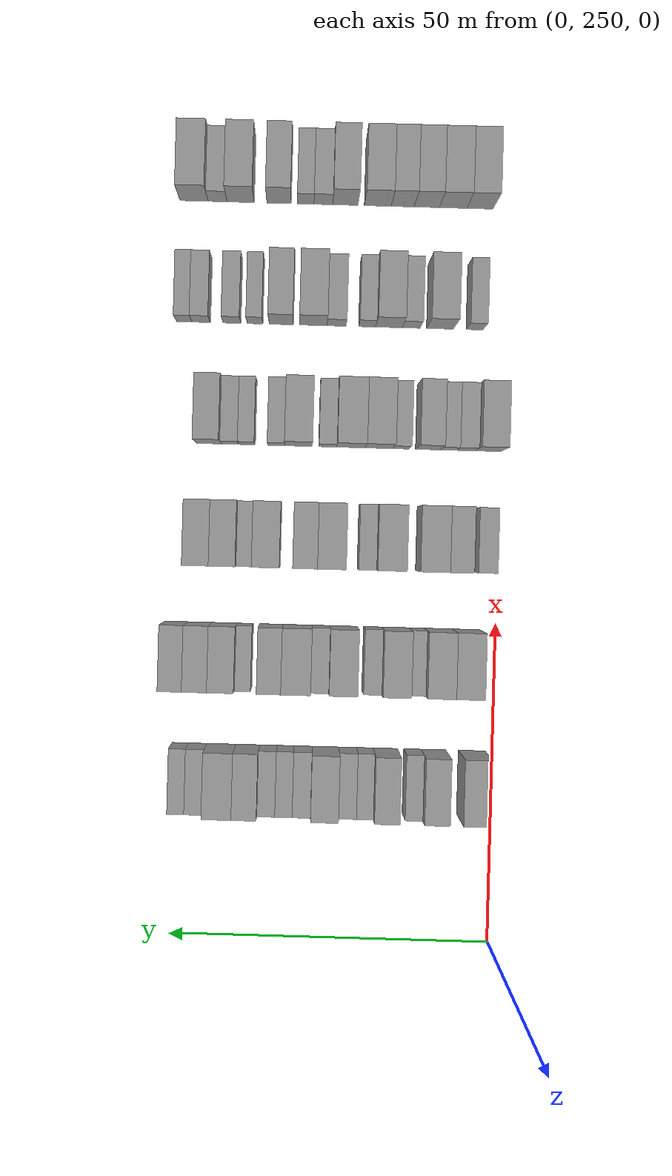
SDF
<sdf version="1.6">
 <world name="default">
  <model name="building_155">
   <static>1</static>
   <pose>25.0000 253.2714 0 0.000000 0.000000 0.000000</pose>
   <link name="link">
    <pose>0 0 4.50 0 0 0</pose>
    <collision name="collision"><geometry><box><size>10.0000 4.2170 9.0000</size></box></geometry></collision>
    <visual name="visual">
     <cast_shadows>0</cast_shadows>
     <geometry><box><size>10.0000 4.2170 9.0000</size></box></geometry>
     <material>
      <script>
       <uri>model://grey_wall/materials/scripts</uri>
       <uri>model://grey_wall/materials/textures</uri>
       <name>vrc/grey_wall</name>
      </script>
     </material>
    </visual>
   </link>
  </model>
  <model name="building_156">
   <static>1</static>
   <pose>25.0000 259.3007 0 0.000000 0.000000 0.000000</pose>
   <link name="link">
    <pose>0 0 4.50 0 0 0</pose>
    <collision name="collision"><geometry><box><size>10.0000 3.8417 9.0000</size></box></geometry></collision>
    <visual name="visual">
     <cast_shadows>0</cast_shadows>
     <geometry><box><size>10.0000 3.8417 9.0000</size></box></geometry>
     <material>
      <script>
       <uri>model://grey_wall/materials/scripts</uri>
       <uri>model://grey_wall/materials/textures</uri>
       <name>vrc/grey_wall</name>
      </script>
     </material>
    </visual>
   </link>
  </model>
  <model name="building_157">
   <static>1</static>
   <pose>25.0000 262.5738 0 0.000000 0.000000 0.000000</pose>
   <link name="link">
    <pose>0 0 3.00 0 0 0</pose>
    <collision name="collision"><geometry><box><size>10.0000 2.7045 6.0000</size></box></geometry></collision>
    <visual name="visual">
     <cast_shadows>0</cast_shadows>
     <geometry><box><size>10.0000 2.7045 6.0000</size></box></geometry>
     <material>
      <script>
       <uri>model://grey_wall/materials/scripts</uri>
       <uri>model://grey_wall/materials/textures</uri>
       <name>vrc/grey_wall</name>
      </script>
     </material>
    </visual>
   </link>
  </model>
  <model name="building_158">
   <static>1</static>
   <pose>25.0000 266.8397 0 0.000000 0.000000 0.000000</pose>
   <link name="link">
    <pose>0 0 4.50 0 0 0</pose>
    <collision name="collision"><geometry><box><size>10.0000 3.8274 9.0000</size></box></geometry></collision>
    <visual name="visual">
     <cast_shadows>0</cast_shadows>
     <geometry><box><size>10.0000 3.8274 9.0000</size></box></geometry>
     <material>
      <script>
       <uri>model://grey_wall/materials/scripts</uri>
       <uri>model://grey_wall/materials/textures</uri>
       <name>vrc/grey_wall</name>
      </script>
     </material>
    </visual>
   </link>
  </model>
  <model name="building_159">
   <static>1</static>
   <pose>25.0000 270.0467 0 0.000000 0.000000 0.000000</pose>
   <link name="link">
    <pose>0 0 3.00 0 0 0</pose>
    <collision name="collision"><geometry><box><size>10.0000 2.5865 6.0000</size></box></geometry></collision>
    <visual name="visual">
     <cast_shadows>0</cast_shadows>
     <geometry><box><size>10.0000 2.5865 6.0000</size></box></geometry>
     <material>
      <script>
       <uri>model://grey_wall/materials/scripts</uri>
       <uri>model://grey_wall/materials/textures</uri>
       <name>vrc/grey_wall</name>
      </script>
     </material>
    </visual>
   </link>
  </model>
  <model name="building_160">
   <static>1</static>
   <pose>25.0000 272.7439 0 0.000000 0.000000 0.000000</pose>
   <link name="link">
    <pose>0 0 3.00 0 0 0</pose>
    <collision name="collision"><geometry><box><size>10.0000 2.8078 6.0000</size></box></geometry></collision>
    <visual name="visual">
     <cast_shadows>0</cast_shadows>
     <geometry><box><size>10.0000 2.8078 6.0000</size></box></geometry>
     <material>
      <script>
       <uri>model://grey_wall/materials/scripts</uri>
       <uri>model://grey_wall/materials/textures</uri>
       <name>vrc/grey_wall</name>
      </script>
     </material>
    </visual>
   </link>
  </model>
  <model name="building_161">
   <static>1</static>
   <pose>25.0000 276.2469 0 0.000000 0.000000 0.000000</pose>
   <link name="link">
    <pose>0 0 4.50 0 0 0</pose>
    <collision name="collision"><geometry><box><size>10.0000 4.1984 9.0000</size></box></geometry></collision>
    <visual name="visual">
     <cast_shadows>0</cast_shadows>
     <geometry><box><size>10.0000 4.1984 9.0000</size></box></geometry>
     <material>
      <script>
       <uri>model://grey_wall/materials/scripts</uri>
       <uri>model://grey_wall/materials/textures</uri>
       <name>vrc/grey_wall</name>
      </script>
     </material>
    </visual>
   </link>
  </model>
  <model name="building_162">
   <static>1</static>
   <pose>25.0000 279.7434 0 0.000000 0.000000 0.000000</pose>
   <link name="link">
    <pose>0 0 3.00 0 0 0</pose>
    <collision name="collision"><geometry><box><size>10.0000 2.7946 6.0000</size></box></geometry></collision>
    <visual name="visual">
     <cast_shadows>0</cast_shadows>
     <geometry><box><size>10.0000 2.7946 6.0000</size></box></geometry>
     <material>
      <script>
       <uri>model://grey_wall/materials/scripts</uri>
       <uri>model://grey_wall/materials/textures</uri>
       <name>vrc/grey_wall</name>
      </script>
     </material>
    </visual>
   </link>
  </model>
  <model name="building_163">
   <static>1</static>
   <pose>25.0000 282.4651 0 0.000000 0.000000 0.000000</pose>
   <link name="link">
    <pose>0 0 3.00 0 0 0</pose>
    <collision name="collision"><geometry><box><size>10.0000 2.6487 6.0000</size></box></geometry></collision>
    <visual name="visual">
     <cast_shadows>0</cast_shadows>
     <geometry><box><size>10.0000 2.6487 6.0000</size></box></geometry>
     <material>
      <script>
       <uri>model://grey_wall/materials/scripts</uri>
       <uri>model://grey_wall/materials/textures</uri>
       <name>vrc/grey_wall</name>
      </script>
     </material>
    </visual>
   </link>
  </model>
  <model name="building_164">
   <static>1</static>
   <pose>25.0000 285.1499 0 0.000000 0.000000 0.000000</pose>
   <link name="link">
    <pose>0 0 3.00 0 0 0</pose>
    <collision name="collision"><geometry><box><size>10.0000 2.7208 6.0000</size></box></geometry></collision>
    <visual name="visual">
     <cast_shadows>0</cast_shadows>
     <geometry><box><size>10.0000 2.7208 6.0000</size></box></geometry>
     <material>
      <script>
       <uri>model://grey_wall/materials/scripts</uri>
       <uri>model://grey_wall/materials/textures</uri>
       <name>vrc/grey_wall</name>
      </script>
     </material>
    </visual>
   </link>
  </model>
  <model name="building_165">
   <static>1</static>
   <pose>25.0000 288.4008 0 0.000000 0.000000 0.000000</pose>
   <link name="link">
    <pose>0 0 4.50 0 0 0</pose>
    <collision name="collision"><geometry><box><size>10.0000 3.7812 9.0000</size></box></geometry></collision>
    <visual name="visual">
     <cast_shadows>0</cast_shadows>
     <geometry><box><size>10.0000 3.7812 9.0000</size></box></geometry>
     <material>
      <script>
       <uri>model://grey_wall/materials/scripts</uri>
       <uri>model://grey_wall/materials/textures</uri>
       <name>vrc/grey_wall</name>
      </script>
     </material>
    </visual>
   </link>
  </model>
  <model name="building_166">
   <static>1</static>
   <pose>25.0000 292.5384 0 0.000000 0.000000 0.000000</pose>
   <link name="link">
    <pose>0 0 4.50 0 0 0</pose>
    <collision name="collision"><geometry><box><size>10.0000 4.4939 9.0000</size></box></geometry></collision>
    <visual name="visual">
     <cast_shadows>0</cast_shadows>
     <geometry><box><size>10.0000 4.4939 9.0000</size></box></geometry>
     <material>
      <script>
       <uri>model://grey_wall/materials/scripts</uri>
       <uri>model://grey_wall/materials/textures</uri>
       <name>vrc/grey_wall</name>
      </script>
     </material>
    </visual>
   </link>
  </model>
  <model name="building_167">
   <static>1</static>
   <pose>25.0000 296.2162 0 0.000000 0.000000 0.000000</pose>
   <link name="link">
    <pose>0 0 3.00 0 0 0</pose>
    <collision name="collision"><geometry><box><size>10.0000 2.8618 6.0000</size></box></geometry></collision>
    <visual name="visual">
     <cast_shadows>0</cast_shadows>
     <geometry><box><size>10.0000 2.8618 6.0000</size></box></geometry>
     <material>
      <script>
       <uri>model://grey_wall/materials/scripts</uri>
       <uri>model://grey_wall/materials/textures</uri>
       <name>vrc/grey_wall</name>
      </script>
     </material>
    </visual>
   </link>
  </model>
  <model name="building_168">
   <static>1</static>
   <pose>25.0000 298.9432 0 0.000000 0.000000 0.000000</pose>
   <link name="link">
    <pose>0 0 3.00 0 0 0</pose>
    <collision name="collision"><geometry><box><size>10.0000 2.5921 6.0000</size></box></geometry></collision>
    <visual name="visual">
     <cast_shadows>0</cast_shadows>
     <geometry><box><size>10.0000 2.5921 6.0000</size></box></geometry>
     <material>
      <script>
       <uri>model://grey_wall/materials/scripts</uri>
       <uri>model://grey_wall/materials/textures</uri>
       <name>vrc/grey_wall</name>
      </script>
     </material>
    </visual>
   </link>
  </model>
  <model name="building_328">
   <static>1</static>
   <pose>44.0000 254.7735 0 0.000000 0.000000 0.000000</pose>
   <link name="link">
    <pose>0 0 4.50 0 0 0</pose>
    <collision name="collision"><geometry><box><size>10.0000 4.3264 9.0000</size></box></geometry></collision>
    <visual name="visual">
     <cast_shadows>0</cast_shadows>
     <geometry><box><size>10.0000 4.3264 9.0000</size></box></geometry>
     <material>
      <script>
       <uri>model://grey_wall/materials/scripts</uri>
       <uri>model://grey_wall/materials/textures</uri>
       <name>vrc/grey_wall</name>
      </script>
     </material>
    </visual>
   </link>
  </model>
  <model name="building_329">
   <static>1</static>
   <pose>44.0000 259.1015 0 0.000000 0.000000 0.000000</pose>
   <link name="link">
    <pose>0 0 4.50 0 0 0</pose>
    <collision name="collision"><geometry><box><size>10.0000 4.3296 9.0000</size></box></geometry></collision>
    <visual name="visual">
     <cast_shadows>0</cast_shadows>
     <geometry><box><size>10.0000 4.3296 9.0000</size></box></geometry>
     <material>
      <script>
       <uri>model://grey_wall/materials/scripts</uri>
       <uri>model://grey_wall/materials/textures</uri>
       <name>vrc/grey_wall</name>
      </script>
     </material>
    </visual>
   </link>
  </model>
  <model name="building_330">
   <static>1</static>
   <pose>44.0000 262.4718 0 0.000000 0.000000 0.000000</pose>
   <link name="link">
    <pose>0 0 3.00 0 0 0</pose>
    <collision name="collision"><geometry><box><size>10.0000 2.4110 6.0000</size></box></geometry></collision>
    <visual name="visual">
     <cast_shadows>0</cast_shadows>
     <geometry><box><size>10.0000 2.4110 6.0000</size></box></geometry>
     <material>
      <script>
       <uri>model://grey_wall/materials/scripts</uri>
       <uri>model://grey_wall/materials/textures</uri>
       <name>vrc/grey_wall</name>
      </script>
     </material>
    </visual>
   </link>
  </model>
  <model name="building_331">
   <static>1</static>
   <pose>44.0000 265.8201 0 0.000000 0.000000 0.000000</pose>
   <link name="link">
    <pose>0 0 4.50 0 0 0</pose>
    <collision name="collision"><geometry><box><size>10.0000 4.2857 9.0000</size></box></geometry></collision>
    <visual name="visual">
     <cast_shadows>0</cast_shadows>
     <geometry><box><size>10.0000 4.2857 9.0000</size></box></geometry>
     <material>
      <script>
       <uri>model://grey_wall/materials/scripts</uri>
       <uri>model://grey_wall/materials/textures</uri>
       <name>vrc/grey_wall</name>
      </script>
     </material>
    </visual>
   </link>
  </model>
  <model name="building_332">
   <static>1</static>
   <pose>44.0000 269.3614 0 0.000000 0.000000 0.000000</pose>
   <link name="link">
    <pose>0 0 3.00 0 0 0</pose>
    <collision name="collision"><geometry><box><size>10.0000 2.7969 6.0000</size></box></geometry></collision>
    <visual name="visual">
     <cast_shadows>0</cast_shadows>
     <geometry><box><size>10.0000 2.7969 6.0000</size></box></geometry>
     <material>
      <script>
       <uri>model://grey_wall/materials/scripts</uri>
       <uri>model://grey_wall/materials/textures</uri>
       <name>vrc/grey_wall</name>
      </script>
     </material>
    </visual>
   </link>
  </model>
  <model name="building_333">
   <static>1</static>
   <pose>44.0000 273.9099 0 0.000000 0.000000 0.000000</pose>
   <link name="link">
    <pose>0 0 4.50 0 0 0</pose>
    <collision name="collision"><geometry><box><size>10.0000 4.2999 9.0000</size></box></geometry></collision>
    <visual name="visual">
     <cast_shadows>0</cast_shadows>
     <geometry><box><size>10.0000 4.2999 9.0000</size></box></geometry>
     <material>
      <script>
       <uri>model://grey_wall/materials/scripts</uri>
       <uri>model://grey_wall/materials/textures</uri>
       <name>vrc/grey_wall</name>
      </script>
     </material>
    </visual>
   </link>
  </model>
  <model name="building_334">
   <static>1</static>
   <pose>44.0000 277.4587 0 0.000000 0.000000 0.000000</pose>
   <link name="link">
    <pose>0 0 3.00 0 0 0</pose>
    <collision name="collision"><geometry><box><size>10.0000 2.7978 6.0000</size></box></geometry></collision>
    <visual name="visual">
     <cast_shadows>0</cast_shadows>
     <geometry><box><size>10.0000 2.7978 6.0000</size></box></geometry>
     <material>
      <script>
       <uri>model://grey_wall/materials/scripts</uri>
       <uri>model://grey_wall/materials/textures</uri>
       <name>vrc/grey_wall</name>
      </script>
     </material>
    </visual>
   </link>
  </model>
  <model name="building_335">
   <static>1</static>
   <pose>44.0000 281.1033 0 0.000000 0.000000 0.000000</pose>
   <link name="link">
    <pose>0 0 4.50 0 0 0</pose>
    <collision name="collision"><geometry><box><size>10.0000 4.4912 9.0000</size></box></geometry></collision>
    <visual name="visual">
     <cast_shadows>0</cast_shadows>
     <geometry><box><size>10.0000 4.4912 9.0000</size></box></geometry>
     <material>
      <script>
       <uri>model://grey_wall/materials/scripts</uri>
       <uri>model://grey_wall/materials/textures</uri>
       <name>vrc/grey_wall</name>
      </script>
     </material>
    </visual>
   </link>
  </model>
  <model name="building_336">
   <static>1</static>
   <pose>44.0000 285.1801 0 0.000000 0.000000 0.000000</pose>
   <link name="link">
    <pose>0 0 4.50 0 0 0</pose>
    <collision name="collision"><geometry><box><size>10.0000 3.6625 9.0000</size></box></geometry></collision>
    <visual name="visual">
     <cast_shadows>0</cast_shadows>
     <geometry><box><size>10.0000 3.6625 9.0000</size></box></geometry>
     <material>
      <script>
       <uri>model://grey_wall/materials/scripts</uri>
       <uri>model://grey_wall/materials/textures</uri>
       <name>vrc/grey_wall</name>
      </script>
     </material>
    </visual>
   </link>
  </model>
  <model name="building_337">
   <static>1</static>
   <pose>44.0000 289.2241 0 0.000000 0.000000 0.000000</pose>
   <link name="link">
    <pose>0 0 3.00 0 0 0</pose>
    <collision name="collision"><geometry><box><size>10.0000 2.4255 6.0000</size></box></geometry></collision>
    <visual name="visual">
     <cast_shadows>0</cast_shadows>
     <geometry><box><size>10.0000 2.4255 6.0000</size></box></geometry>
     <material>
      <script>
       <uri>model://grey_wall/materials/scripts</uri>
       <uri>model://grey_wall/materials/textures</uri>
       <name>vrc/grey_wall</name>
      </script>
     </material>
    </visual>
   </link>
  </model>
  <model name="building_338">
   <static>1</static>
   <pose>44.0000 292.4538 0 0.000000 0.000000 0.000000</pose>
   <link name="link">
    <pose>0 0 4.50 0 0 0</pose>
    <collision name="collision"><geometry><box><size>10.0000 4.0338 9.0000</size></box></geometry></collision>
    <visual name="visual">
     <cast_shadows>0</cast_shadows>
     <geometry><box><size>10.0000 4.0338 9.0000</size></box></geometry>
     <material>
      <script>
       <uri>model://grey_wall/materials/scripts</uri>
       <uri>model://grey_wall/materials/textures</uri>
       <name>vrc/grey_wall</name>
      </script>
     </material>
    </visual>
   </link>
  </model>
  <model name="building_339">
   <static>1</static>
   <pose>44.0000 296.3548 0 0.000000 0.000000 0.000000</pose>
   <link name="link">
    <pose>0 0 4.50 0 0 0</pose>
    <collision name="collision"><geometry><box><size>10.0000 3.7683 9.0000</size></box></geometry></collision>
    <visual name="visual">
     <cast_shadows>0</cast_shadows>
     <geometry><box><size>10.0000 3.7683 9.0000</size></box></geometry>
     <material>
      <script>
       <uri>model://grey_wall/materials/scripts</uri>
       <uri>model://grey_wall/materials/textures</uri>
       <name>vrc/grey_wall</name>
      </script>
     </material>
    </visual>
   </link>
  </model>
  <model name="building_340">
   <static>1</static>
   <pose>44.0000 300.0553 0 0.000000 0.000000 0.000000</pose>
   <link name="link">
    <pose>0 0 4.50 0 0 0</pose>
    <collision name="collision"><geometry><box><size>10.0000 3.6328 9.0000</size></box></geometry></collision>
    <visual name="visual">
     <cast_shadows>0</cast_shadows>
     <geometry><box><size>10.0000 3.6328 9.0000</size></box></geometry>
     <material>
      <script>
       <uri>model://grey_wall/materials/scripts</uri>
       <uri>model://grey_wall/materials/textures</uri>
       <name>vrc/grey_wall</name>
      </script>
     </material>
    </visual>
   </link>
  </model>
  <model name="building_503">
   <static>1</static>
   <pose>63.0000 252.2778 0 0.000000 0.000000 0.000000</pose>
   <link name="link">
    <pose>0 0 3.00 0 0 0</pose>
    <collision name="collision"><geometry><box><size>10.0000 2.9778 6.0000</size></box></geometry></collision>
    <visual name="visual">
     <cast_shadows>0</cast_shadows>
     <geometry><box><size>10.0000 2.9778 6.0000</size></box></geometry>
     <material>
      <script>
       <uri>model://grey_wall/materials/scripts</uri>
       <uri>model://grey_wall/materials/textures</uri>
       <name>vrc/grey_wall</name>
      </script>
     </material>
    </visual>
   </link>
  </model>
  <model name="building_504">
   <static>1</static>
   <pose>63.0000 256.5765 0 0.000000 0.000000 0.000000</pose>
   <link name="link">
    <pose>0 0 4.50 0 0 0</pose>
    <collision name="collision"><geometry><box><size>10.0000 3.6197 9.0000</size></box></geometry></collision>
    <visual name="visual">
     <cast_shadows>0</cast_shadows>
     <geometry><box><size>10.0000 3.6197 9.0000</size></box></geometry>
     <material>
      <script>
       <uri>model://grey_wall/materials/scripts</uri>
       <uri>model://grey_wall/materials/textures</uri>
       <name>vrc/grey_wall</name>
      </script>
     </material>
    </visual>
   </link>
  </model>
  <model name="building_505">
   <static>1</static>
   <pose>63.0000 260.6213 0 0.000000 0.000000 0.000000</pose>
   <link name="link">
    <pose>0 0 4.50 0 0 0</pose>
    <collision name="collision"><geometry><box><size>10.0000 4.4699 9.0000</size></box></geometry></collision>
    <visual name="visual">
     <cast_shadows>0</cast_shadows>
     <geometry><box><size>10.0000 4.4699 9.0000</size></box></geometry>
     <material>
      <script>
       <uri>model://grey_wall/materials/scripts</uri>
       <uri>model://grey_wall/materials/textures</uri>
       <name>vrc/grey_wall</name>
      </script>
     </material>
    </visual>
   </link>
  </model>
  <model name="building_506">
   <static>1</static>
   <pose>63.0000 267.0608 0 0.000000 0.000000 0.000000</pose>
   <link name="link">
    <pose>0 0 4.50 0 0 0</pose>
    <collision name="collision"><geometry><box><size>10.0000 4.4092 9.0000</size></box></geometry></collision>
    <visual name="visual">
     <cast_shadows>0</cast_shadows>
     <geometry><box><size>10.0000 4.4092 9.0000</size></box></geometry>
     <material>
      <script>
       <uri>model://grey_wall/materials/scripts</uri>
       <uri>model://grey_wall/materials/textures</uri>
       <name>vrc/grey_wall</name>
      </script>
     </material>
    </visual>
   </link>
  </model>
  <model name="building_507">
   <static>1</static>
   <pose>63.0000 270.6337 0 0.000000 0.000000 0.000000</pose>
   <link name="link">
    <pose>0 0 3.00 0 0 0</pose>
    <collision name="collision"><geometry><box><size>10.0000 2.7365 6.0000</size></box></geometry></collision>
    <visual name="visual">
     <cast_shadows>0</cast_shadows>
     <geometry><box><size>10.0000 2.7365 6.0000</size></box></geometry>
     <material>
      <script>
       <uri>model://grey_wall/materials/scripts</uri>
       <uri>model://grey_wall/materials/textures</uri>
       <name>vrc/grey_wall</name>
      </script>
     </material>
    </visual>
   </link>
  </model>
  <model name="building_508">
   <static>1</static>
   <pose>63.0000 276.1651 0 0.000000 0.000000 0.000000</pose>
   <link name="link">
    <pose>0 0 4.50 0 0 0</pose>
    <collision name="collision"><geometry><box><size>10.0000 4.3264 9.0000</size></box></geometry></collision>
    <visual name="visual">
     <cast_shadows>0</cast_shadows>
     <geometry><box><size>10.0000 4.3264 9.0000</size></box></geometry>
     <material>
      <script>
       <uri>model://grey_wall/materials/scripts</uri>
       <uri>model://grey_wall/materials/textures</uri>
       <name>vrc/grey_wall</name>
      </script>
     </material>
    </visual>
   </link>
  </model>
  <model name="building_509">
   <static>1</static>
   <pose>63.0000 280.1965 0 0.000000 0.000000 0.000000</pose>
   <link name="link">
    <pose>0 0 4.50 0 0 0</pose>
    <collision name="collision"><geometry><box><size>10.0000 3.7363 9.0000</size></box></geometry></collision>
    <visual name="visual">
     <cast_shadows>0</cast_shadows>
     <geometry><box><size>10.0000 3.7363 9.0000</size></box></geometry>
     <material>
      <script>
       <uri>model://grey_wall/materials/scripts</uri>
       <uri>model://grey_wall/materials/textures</uri>
       <name>vrc/grey_wall</name>
      </script>
     </material>
    </visual>
   </link>
  </model>
  <model name="building_510">
   <static>1</static>
   <pose>63.0000 286.1677 0 0.000000 0.000000 0.000000</pose>
   <link name="link">
    <pose>0 0 4.50 0 0 0</pose>
    <collision name="collision"><geometry><box><size>10.0000 4.2062 9.0000</size></box></geometry></collision>
    <visual name="visual">
     <cast_shadows>0</cast_shadows>
     <geometry><box><size>10.0000 4.2062 9.0000</size></box></geometry>
     <material>
      <script>
       <uri>model://grey_wall/materials/scripts</uri>
       <uri>model://grey_wall/materials/textures</uri>
       <name>vrc/grey_wall</name>
      </script>
     </material>
    </visual>
   </link>
  </model>
  <model name="building_511">
   <static>1</static>
   <pose>63.0000 289.4910 0 0.000000 0.000000 0.000000</pose>
   <link name="link">
    <pose>0 0 3.00 0 0 0</pose>
    <collision name="collision"><geometry><box><size>10.0000 2.4405 6.0000</size></box></geometry></collision>
    <visual name="visual">
     <cast_shadows>0</cast_shadows>
     <geometry><box><size>10.0000 2.4405 6.0000</size></box></geometry>
     <material>
      <script>
       <uri>model://grey_wall/materials/scripts</uri>
       <uri>model://grey_wall/materials/textures</uri>
       <name>vrc/grey_wall</name>
      </script>
     </material>
    </visual>
   </link>
  </model>
  <model name="building_512">
   <static>1</static>
   <pose>63.0000 292.7194 0 0.000000 0.000000 0.000000</pose>
   <link name="link">
    <pose>0 0 4.50 0 0 0</pose>
    <collision name="collision"><geometry><box><size>10.0000 4.0164 9.0000</size></box></geometry></collision>
    <visual name="visual">
     <cast_shadows>0</cast_shadows>
     <geometry><box><size>10.0000 4.0164 9.0000</size></box></geometry>
     <material>
      <script>
       <uri>model://grey_wall/materials/scripts</uri>
       <uri>model://grey_wall/materials/textures</uri>
       <name>vrc/grey_wall</name>
      </script>
     </material>
    </visual>
   </link>
  </model>
  <model name="building_513">
   <static>1</static>
   <pose>63.0000 296.7340 0 0.000000 0.000000 0.000000</pose>
   <link name="link">
    <pose>0 0 4.50 0 0 0</pose>
    <collision name="collision"><geometry><box><size>10.0000 4.0128 9.0000</size></box></geometry></collision>
    <visual name="visual">
     <cast_shadows>0</cast_shadows>
     <geometry><box><size>10.0000 4.0128 9.0000</size></box></geometry>
     <material>
      <script>
       <uri>model://grey_wall/materials/scripts</uri>
       <uri>model://grey_wall/materials/textures</uri>
       <name>vrc/grey_wall</name>
      </script>
     </material>
    </visual>
   </link>
  </model>
  <model name="building_677">
   <static>1</static>
   <pose>82.0000 252.0395 0 0.000000 0.000000 0.000000</pose>
   <link name="link">
    <pose>0 0 4.50 0 0 0</pose>
    <collision name="collision"><geometry><box><size>10.0000 4.0957 9.0000</size></box></geometry></collision>
    <visual name="visual">
     <cast_shadows>0</cast_shadows>
     <geometry><box><size>10.0000 4.0957 9.0000</size></box></geometry>
     <material>
      <script>
       <uri>model://grey_wall/materials/scripts</uri>
       <uri>model://grey_wall/materials/textures</uri>
       <name>vrc/grey_wall</name>
      </script>
     </material>
    </visual>
   </link>
  </model>
  <model name="building_678">
   <static>1</static>
   <pose>82.0000 255.5500 0 0.000000 0.000000 0.000000</pose>
   <link name="link">
    <pose>0 0 3.00 0 0 0</pose>
    <collision name="collision"><geometry><box><size>10.0000 2.9252 6.0000</size></box></geometry></collision>
    <visual name="visual">
     <cast_shadows>0</cast_shadows>
     <geometry><box><size>10.0000 2.9252 6.0000</size></box></geometry>
     <material>
      <script>
       <uri>model://grey_wall/materials/scripts</uri>
       <uri>model://grey_wall/materials/textures</uri>
       <name>vrc/grey_wall</name>
      </script>
     </material>
    </visual>
   </link>
  </model>
  <model name="building_679">
   <static>1</static>
   <pose>82.0000 258.3167 0 0.000000 0.000000 0.000000</pose>
   <link name="link">
    <pose>0 0 3.00 0 0 0</pose>
    <collision name="collision"><geometry><box><size>10.0000 2.6082 6.0000</size></box></geometry></collision>
    <visual name="visual">
     <cast_shadows>0</cast_shadows>
     <geometry><box><size>10.0000 2.6082 6.0000</size></box></geometry>
     <material>
      <script>
       <uri>model://grey_wall/materials/scripts</uri>
       <uri>model://grey_wall/materials/textures</uri>
       <name>vrc/grey_wall</name>
      </script>
     </material>
    </visual>
   </link>
  </model>
  <model name="building_680">
   <static>1</static>
   <pose>82.0000 261.4950 0 0.000000 0.000000 0.000000</pose>
   <link name="link">
    <pose>0 0 4.50 0 0 0</pose>
    <collision name="collision"><geometry><box><size>10.0000 3.7486 9.0000</size></box></geometry></collision>
    <visual name="visual">
     <cast_shadows>0</cast_shadows>
     <geometry><box><size>10.0000 3.7486 9.0000</size></box></geometry>
     <material>
      <script>
       <uri>model://grey_wall/materials/scripts</uri>
       <uri>model://grey_wall/materials/textures</uri>
       <name>vrc/grey_wall</name>
      </script>
     </material>
    </visual>
   </link>
  </model>
  <model name="building_681">
   <static>1</static>
   <pose>82.0000 265.6900 0 0.000000 0.000000 0.000000</pose>
   <link name="link">
    <pose>0 0 3.00 0 0 0</pose>
    <collision name="collision"><geometry><box><size>10.0000 2.6414 6.0000</size></box></geometry></collision>
    <visual name="visual">
     <cast_shadows>0</cast_shadows>
     <geometry><box><size>10.0000 2.6414 6.0000</size></box></geometry>
     <material>
      <script>
       <uri>model://grey_wall/materials/scripts</uri>
       <uri>model://grey_wall/materials/textures</uri>
       <name>vrc/grey_wall</name>
      </script>
     </material>
    </visual>
   </link>
  </model>
  <model name="building_682">
   <static>1</static>
   <pose>82.0000 269.1672 0 0.000000 0.000000 0.000000</pose>
   <link name="link">
    <pose>0 0 4.50 0 0 0</pose>
    <collision name="collision"><geometry><box><size>10.0000 4.3130 9.0000</size></box></geometry></collision>
    <visual name="visual">
     <cast_shadows>0</cast_shadows>
     <geometry><box><size>10.0000 4.3130 9.0000</size></box></geometry>
     <material>
      <script>
       <uri>model://grey_wall/materials/scripts</uri>
       <uri>model://grey_wall/materials/textures</uri>
       <name>vrc/grey_wall</name>
      </script>
     </material>
    </visual>
   </link>
  </model>
  <model name="building_683">
   <static>1</static>
   <pose>82.0000 273.5604 0 0.000000 0.000000 0.000000</pose>
   <link name="link">
    <pose>0 0 4.50 0 0 0</pose>
    <collision name="collision"><geometry><box><size>10.0000 4.4733 9.0000</size></box></geometry></collision>
    <visual name="visual">
     <cast_shadows>0</cast_shadows>
     <geometry><box><size>10.0000 4.4733 9.0000</size></box></geometry>
     <material>
      <script>
       <uri>model://grey_wall/materials/scripts</uri>
       <uri>model://grey_wall/materials/textures</uri>
       <name>vrc/grey_wall</name>
      </script>
     </material>
    </visual>
   </link>
  </model>
  <model name="building_684">
   <static>1</static>
   <pose>82.0000 277.1788 0 0.000000 0.000000 0.000000</pose>
   <link name="link">
    <pose>0 0 3.00 0 0 0</pose>
    <collision name="collision"><geometry><box><size>10.0000 2.7636 6.0000</size></box></geometry></collision>
    <visual name="visual">
     <cast_shadows>0</cast_shadows>
     <geometry><box><size>10.0000 2.7636 6.0000</size></box></geometry>
     <material>
      <script>
       <uri>model://grey_wall/materials/scripts</uri>
       <uri>model://grey_wall/materials/textures</uri>
       <name>vrc/grey_wall</name>
      </script>
     </material>
    </visual>
   </link>
  </model>
  <model name="building_685">
   <static>1</static>
   <pose>82.0000 281.6848 0 0.000000 0.000000 0.000000</pose>
   <link name="link">
    <pose>0 0 4.50 0 0 0</pose>
    <collision name="collision"><geometry><box><size>10.0000 4.2485 9.0000</size></box></geometry></collision>
    <visual name="visual">
     <cast_shadows>0</cast_shadows>
     <geometry><box><size>10.0000 4.2485 9.0000</size></box></geometry>
     <material>
      <script>
       <uri>model://grey_wall/materials/scripts</uri>
       <uri>model://grey_wall/materials/textures</uri>
       <name>vrc/grey_wall</name>
      </script>
     </material>
    </visual>
   </link>
  </model>
  <model name="building_686">
   <static>1</static>
   <pose>82.0000 285.1469 0 0.000000 0.000000 0.000000</pose>
   <link name="link">
    <pose>0 0 3.00 0 0 0</pose>
    <collision name="collision"><geometry><box><size>10.0000 2.6758 6.0000</size></box></geometry></collision>
    <visual name="visual">
     <cast_shadows>0</cast_shadows>
     <geometry><box><size>10.0000 2.6758 6.0000</size></box></geometry>
     <material>
      <script>
       <uri>model://grey_wall/materials/scripts</uri>
       <uri>model://grey_wall/materials/textures</uri>
       <name>vrc/grey_wall</name>
      </script>
     </material>
    </visual>
   </link>
  </model>
  <model name="building_687">
   <static>1</static>
   <pose>82.0000 289.7579 0 0.000000 0.000000 0.000000</pose>
   <link name="link">
    <pose>0 0 3.00 0 0 0</pose>
    <collision name="collision"><geometry><box><size>10.0000 2.5463 6.0000</size></box></geometry></collision>
    <visual name="visual">
     <cast_shadows>0</cast_shadows>
     <geometry><box><size>10.0000 2.5463 6.0000</size></box></geometry>
     <material>
      <script>
       <uri>model://grey_wall/materials/scripts</uri>
       <uri>model://grey_wall/materials/textures</uri>
       <name>vrc/grey_wall</name>
      </script>
     </material>
    </visual>
   </link>
  </model>
  <model name="building_688">
   <static>1</static>
   <pose>82.0000 292.3674 0 0.000000 0.000000 0.000000</pose>
   <link name="link">
    <pose>0 0 3.00 0 0 0</pose>
    <collision name="collision"><geometry><box><size>10.0000 2.6727 6.0000</size></box></geometry></collision>
    <visual name="visual">
     <cast_shadows>0</cast_shadows>
     <geometry><box><size>10.0000 2.6727 6.0000</size></box></geometry>
     <material>
      <script>
       <uri>model://grey_wall/materials/scripts</uri>
       <uri>model://grey_wall/materials/textures</uri>
       <name>vrc/grey_wall</name>
      </script>
     </material>
    </visual>
   </link>
  </model>
  <model name="building_689">
   <static>1</static>
   <pose>82.0000 295.6810 0 0.000000 0.000000 0.000000</pose>
   <link name="link">
    <pose>0 0 4.50 0 0 0</pose>
    <collision name="collision"><geometry><box><size>10.0000 3.9546 9.0000</size></box></geometry></collision>
    <visual name="visual">
     <cast_shadows>0</cast_shadows>
     <geometry><box><size>10.0000 3.9546 9.0000</size></box></geometry>
     <material>
      <script>
       <uri>model://grey_wall/materials/scripts</uri>
       <uri>model://grey_wall/materials/textures</uri>
       <name>vrc/grey_wall</name>
      </script>
     </material>
    </visual>
   </link>
  </model>
  <model name="building_853">
   <static>1</static>
   <pose>101.0000 254.6270 0 0.000000 0.000000 0.000000</pose>
   <link name="link">
    <pose>0 0 3.00 0 0 0</pose>
    <collision name="collision"><geometry><box><size>10.0000 2.6485 6.0000</size></box></geometry></collision>
    <visual name="visual">
     <cast_shadows>0</cast_shadows>
     <geometry><box><size>10.0000 2.6485 6.0000</size></box></geometry>
     <material>
      <script>
       <uri>model://grey_wall/materials/scripts</uri>
       <uri>model://grey_wall/materials/textures</uri>
       <name>vrc/grey_wall</name>
      </script>
     </material>
    </visual>
   </link>
  </model>
  <model name="building_854">
   <static>1</static>
   <pose>101.0000 260.0537 0 0.000000 0.000000 0.000000</pose>
   <link name="link">
    <pose>0 0 4.50 0 0 0</pose>
    <collision name="collision"><geometry><box><size>10.0000 4.2048 9.0000</size></box></geometry></collision>
    <visual name="visual">
     <cast_shadows>0</cast_shadows>
     <geometry><box><size>10.0000 4.2048 9.0000</size></box></geometry>
     <material>
      <script>
       <uri>model://grey_wall/materials/scripts</uri>
       <uri>model://grey_wall/materials/textures</uri>
       <name>vrc/grey_wall</name>
      </script>
     </material>
    </visual>
   </link>
  </model>
  <model name="building_855">
   <static>1</static>
   <pose>101.0000 264.5765 0 0.000000 0.000000 0.000000</pose>
   <link name="link">
    <pose>0 0 3.00 0 0 0</pose>
    <collision name="collision"><geometry><box><size>10.0000 2.8407 6.0000</size></box></geometry></collision>
    <visual name="visual">
     <cast_shadows>0</cast_shadows>
     <geometry><box><size>10.0000 2.8407 6.0000</size></box></geometry>
     <material>
      <script>
       <uri>model://grey_wall/materials/scripts</uri>
       <uri>model://grey_wall/materials/textures</uri>
       <name>vrc/grey_wall</name>
      </script>
     </material>
    </visual>
   </link>
  </model>
  <model name="building_856">
   <static>1</static>
   <pose>101.0000 268.0824 0 0.000000 0.000000 0.000000</pose>
   <link name="link">
    <pose>0 0 4.50 0 0 0</pose>
    <collision name="collision"><geometry><box><size>10.0000 4.1712 9.0000</size></box></geometry></collision>
    <visual name="visual">
     <cast_shadows>0</cast_shadows>
     <geometry><box><size>10.0000 4.1712 9.0000</size></box></geometry>
     <material>
      <script>
       <uri>model://grey_wall/materials/scripts</uri>
       <uri>model://grey_wall/materials/textures</uri>
       <name>vrc/grey_wall</name>
      </script>
     </material>
    </visual>
   </link>
  </model>
  <model name="building_857">
   <static>1</static>
   <pose>101.0000 271.4851 0 0.000000 0.000000 0.000000</pose>
   <link name="link">
    <pose>0 0 3.00 0 0 0</pose>
    <collision name="collision"><geometry><box><size>10.0000 2.6342 6.0000</size></box></geometry></collision>
    <visual name="visual">
     <cast_shadows>0</cast_shadows>
     <geometry><box><size>10.0000 2.6342 6.0000</size></box></geometry>
     <material>
      <script>
       <uri>model://grey_wall/materials/scripts</uri>
       <uri>model://grey_wall/materials/textures</uri>
       <name>vrc/grey_wall</name>
      </script>
     </material>
    </visual>
   </link>
  </model>
  <model name="building_858">
   <static>1</static>
   <pose>101.0000 276.2825 0 0.000000 0.000000 0.000000</pose>
   <link name="link">
    <pose>0 0 3.00 0 0 0</pose>
    <collision name="collision"><geometry><box><size>10.0000 2.9606 6.0000</size></box></geometry></collision>
    <visual name="visual">
     <cast_shadows>0</cast_shadows>
     <geometry><box><size>10.0000 2.9606 6.0000</size></box></geometry>
     <material>
      <script>
       <uri>model://grey_wall/materials/scripts</uri>
       <uri>model://grey_wall/materials/textures</uri>
       <name>vrc/grey_wall</name>
      </script>
     </material>
    </visual>
   </link>
  </model>
  <model name="building_859">
   <static>1</static>
   <pose>101.0000 279.8986 0 0.000000 0.000000 0.000000</pose>
   <link name="link">
    <pose>0 0 4.50 0 0 0</pose>
    <collision name="collision"><geometry><box><size>10.0000 4.2716 9.0000</size></box></geometry></collision>
    <visual name="visual">
     <cast_shadows>0</cast_shadows>
     <geometry><box><size>10.0000 4.2716 9.0000</size></box></geometry>
     <material>
      <script>
       <uri>model://grey_wall/materials/scripts</uri>
       <uri>model://grey_wall/materials/textures</uri>
       <name>vrc/grey_wall</name>
      </script>
     </material>
    </visual>
   </link>
  </model>
  <model name="building_860">
   <static>1</static>
   <pose>101.0000 284.9287 0 0.000000 0.000000 0.000000</pose>
   <link name="link">
    <pose>0 0 4.50 0 0 0</pose>
    <collision name="collision"><geometry><box><size>10.0000 3.7886 9.0000</size></box></geometry></collision>
    <visual name="visual">
     <cast_shadows>0</cast_shadows>
     <geometry><box><size>10.0000 3.7886 9.0000</size></box></geometry>
     <material>
      <script>
       <uri>model://grey_wall/materials/scripts</uri>
       <uri>model://grey_wall/materials/textures</uri>
       <name>vrc/grey_wall</name>
      </script>
     </material>
    </visual>
   </link>
  </model>
  <model name="building_861">
   <static>1</static>
   <pose>101.0000 289.0426 0 0.000000 0.000000 0.000000</pose>
   <link name="link">
    <pose>0 0 3.00 0 0 0</pose>
    <collision name="collision"><geometry><box><size>10.0000 2.4391 6.0000</size></box></geometry></collision>
    <visual name="visual">
     <cast_shadows>0</cast_shadows>
     <geometry><box><size>10.0000 2.4391 6.0000</size></box></geometry>
     <material>
      <script>
       <uri>model://grey_wall/materials/scripts</uri>
       <uri>model://grey_wall/materials/textures</uri>
       <name>vrc/grey_wall</name>
      </script>
     </material>
    </visual>
   </link>
  </model>
  <model name="building_862">
   <static>1</static>
   <pose>101.0000 292.6473 0 0.000000 0.000000 0.000000</pose>
   <link name="link">
    <pose>0 0 3.00 0 0 0</pose>
    <collision name="collision"><geometry><box><size>10.0000 2.7702 6.0000</size></box></geometry></collision>
    <visual name="visual">
     <cast_shadows>0</cast_shadows>
     <geometry><box><size>10.0000 2.7702 6.0000</size></box></geometry>
     <material>
      <script>
       <uri>model://grey_wall/materials/scripts</uri>
       <uri>model://grey_wall/materials/textures</uri>
       <name>vrc/grey_wall</name>
      </script>
     </material>
    </visual>
   </link>
  </model>
  <model name="building_863">
   <static>1</static>
   <pose>101.0000 297.4650 0 0.000000 0.000000 0.000000</pose>
   <link name="link">
    <pose>0 0 3.00 0 0 0</pose>
    <collision name="collision"><geometry><box><size>10.0000 2.8652 6.0000</size></box></geometry></collision>
    <visual name="visual">
     <cast_shadows>0</cast_shadows>
     <geometry><box><size>10.0000 2.8652 6.0000</size></box></geometry>
     <material>
      <script>
       <uri>model://grey_wall/materials/scripts</uri>
       <uri>model://grey_wall/materials/textures</uri>
       <name>vrc/grey_wall</name>
      </script>
     </material>
    </visual>
   </link>
  </model>
  <model name="building_864">
   <static>1</static>
   <pose>101.0000 300.1047 0 0.000000 0.000000 0.000000</pose>
   <link name="link">
    <pose>0 0 3.00 0 0 0</pose>
    <collision name="collision"><geometry><box><size>10.0000 2.4143 6.0000</size></box></geometry></collision>
    <visual name="visual">
     <cast_shadows>0</cast_shadows>
     <geometry><box><size>10.0000 2.4143 6.0000</size></box></geometry>
     <material>
      <script>
       <uri>model://grey_wall/materials/scripts</uri>
       <uri>model://grey_wall/materials/textures</uri>
       <name>vrc/grey_wall</name>
      </script>
     </material>
    </visual>
   </link>
  </model>
  <model name="building_1024">
   <static>1</static>
   <pose>120.0000 254.3037 0 0.000000 0.000000 0.000000</pose>
   <link name="link">
    <pose>0 0 4.50 0 0 0</pose>
    <collision name="collision"><geometry><box><size>10.0000 4.1213 9.0000</size></box></geometry></collision>
    <visual name="visual">
     <cast_shadows>0</cast_shadows>
     <geometry><box><size>10.0000 4.1213 9.0000</size></box></geometry>
     <material>
      <script>
       <uri>model://grey_wall/materials/scripts</uri>
       <uri>model://grey_wall/materials/textures</uri>
       <name>vrc/grey_wall</name>
      </script>
     </material>
    </visual>
   </link>
  </model>
  <model name="building_1025">
   <static>1</static>
   <pose>120.0000 258.5147 0 0.000000 0.000000 0.000000</pose>
   <link name="link">
    <pose>0 0 4.50 0 0 0</pose>
    <collision name="collision"><geometry><box><size>10.0000 4.3007 9.0000</size></box></geometry></collision>
    <visual name="visual">
     <cast_shadows>0</cast_shadows>
     <geometry><box><size>10.0000 4.3007 9.0000</size></box></geometry>
     <material>
      <script>
       <uri>model://grey_wall/materials/scripts</uri>
       <uri>model://grey_wall/materials/textures</uri>
       <name>vrc/grey_wall</name>
      </script>
     </material>
    </visual>
   </link>
  </model>
  <model name="building_1026">
   <static>1</static>
   <pose>120.0000 262.6361 0 0.000000 0.000000 0.000000</pose>
   <link name="link">
    <pose>0 0 4.50 0 0 0</pose>
    <collision name="collision"><geometry><box><size>10.0000 3.9421 9.0000</size></box></geometry></collision>
    <visual name="visual">
     <cast_shadows>0</cast_shadows>
     <geometry><box><size>10.0000 3.9421 9.0000</size></box></geometry>
     <material>
      <script>
       <uri>model://grey_wall/materials/scripts</uri>
       <uri>model://grey_wall/materials/textures</uri>
       <name>vrc/grey_wall</name>
      </script>
     </material>
    </visual>
   </link>
  </model>
  <model name="building_1027">
   <static>1</static>
   <pose>120.0000 266.4094 0 0.000000 0.000000 0.000000</pose>
   <link name="link">
    <pose>0 0 4.50 0 0 0</pose>
    <collision name="collision"><geometry><box><size>10.0000 3.6045 9.0000</size></box></geometry></collision>
    <visual name="visual">
     <cast_shadows>0</cast_shadows>
     <geometry><box><size>10.0000 3.6045 9.0000</size></box></geometry>
     <material>
      <script>
       <uri>model://grey_wall/materials/scripts</uri>
       <uri>model://grey_wall/materials/textures</uri>
       <name>vrc/grey_wall</name>
      </script>
     </material>
    </visual>
   </link>
  </model>
  <model name="building_1028">
   <static>1</static>
   <pose>120.0000 270.3145 0 0.000000 0.000000 0.000000</pose>
   <link name="link">
    <pose>0 0 4.50 0 0 0</pose>
    <collision name="collision"><geometry><box><size>10.0000 4.2057 9.0000</size></box></geometry></collision>
    <visual name="visual">
     <cast_shadows>0</cast_shadows>
     <geometry><box><size>10.0000 4.2057 9.0000</size></box></geometry>
     <material>
      <script>
       <uri>model://grey_wall/materials/scripts</uri>
       <uri>model://grey_wall/materials/textures</uri>
       <name>vrc/grey_wall</name>
      </script>
     </material>
    </visual>
   </link>
  </model>
  <model name="building_1029">
   <static>1</static>
   <pose>120.0000 275.4046 0 0.000000 0.000000 0.000000</pose>
   <link name="link">
    <pose>0 0 4.50 0 0 0</pose>
    <collision name="collision"><geometry><box><size>10.0000 3.9747 9.0000</size></box></geometry></collision>
    <visual name="visual">
     <cast_shadows>0</cast_shadows>
     <geometry><box><size>10.0000 3.9747 9.0000</size></box></geometry>
     <material>
      <script>
       <uri>model://grey_wall/materials/scripts</uri>
       <uri>model://grey_wall/materials/textures</uri>
       <name>vrc/grey_wall</name>
      </script>
     </material>
    </visual>
   </link>
  </model>
  <model name="building_1030">
   <static>1</static>
   <pose>120.0000 278.8591 0 0.000000 0.000000 0.000000</pose>
   <link name="link">
    <pose>0 0 3.00 0 0 0</pose>
    <collision name="collision"><geometry><box><size>10.0000 2.9344 6.0000</size></box></geometry></collision>
    <visual name="visual">
     <cast_shadows>0</cast_shadows>
     <geometry><box><size>10.0000 2.9344 6.0000</size></box></geometry>
     <material>
      <script>
       <uri>model://grey_wall/materials/scripts</uri>
       <uri>model://grey_wall/materials/textures</uri>
       <name>vrc/grey_wall</name>
      </script>
     </material>
    </visual>
   </link>
  </model>
  <model name="building_1031">
   <static>1</static>
   <pose>120.0000 281.6100 0 0.000000 0.000000 0.000000</pose>
   <link name="link">
    <pose>0 0 3.00 0 0 0</pose>
    <collision name="collision"><geometry><box><size>10.0000 2.5673 6.0000</size></box></geometry></collision>
    <visual name="visual">
     <cast_shadows>0</cast_shadows>
     <geometry><box><size>10.0000 2.5673 6.0000</size></box></geometry>
     <material>
      <script>
       <uri>model://grey_wall/materials/scripts</uri>
       <uri>model://grey_wall/materials/textures</uri>
       <name>vrc/grey_wall</name>
      </script>
     </material>
    </visual>
   </link>
  </model>
  <model name="building_1032">
   <static>1</static>
   <pose>120.0000 285.7936 0 0.000000 0.000000 0.000000</pose>
   <link name="link">
    <pose>0 0 4.50 0 0 0</pose>
    <collision name="collision"><geometry><box><size>10.0000 3.7999 9.0000</size></box></geometry></collision>
    <visual name="visual">
     <cast_shadows>0</cast_shadows>
     <geometry><box><size>10.0000 3.7999 9.0000</size></box></geometry>
     <material>
      <script>
       <uri>model://grey_wall/materials/scripts</uri>
       <uri>model://grey_wall/materials/textures</uri>
       <name>vrc/grey_wall</name>
      </script>
     </material>
    </visual>
   </link>
  </model>
  <model name="building_1033">
   <static>1</static>
   <pose>120.0000 291.8208 0 0.000000 0.000000 0.000000</pose>
   <link name="link">
    <pose>0 0 4.50 0 0 0</pose>
    <collision name="collision"><geometry><box><size>10.0000 4.2545 9.0000</size></box></geometry></collision>
    <visual name="visual">
     <cast_shadows>0</cast_shadows>
     <geometry><box><size>10.0000 4.2545 9.0000</size></box></geometry>
     <material>
      <script>
       <uri>model://grey_wall/materials/scripts</uri>
       <uri>model://grey_wall/materials/textures</uri>
       <name>vrc/grey_wall</name>
      </script>
     </material>
    </visual>
   </link>
  </model>
  <model name="building_1034">
   <static>1</static>
   <pose>120.0000 295.4269 0 0.000000 0.000000 0.000000</pose>
   <link name="link">
    <pose>0 0 3.00 0 0 0</pose>
    <collision name="collision"><geometry><box><size>10.0000 2.9579 6.0000</size></box></geometry></collision>
    <visual name="visual">
     <cast_shadows>0</cast_shadows>
     <geometry><box><size>10.0000 2.9579 6.0000</size></box></geometry>
     <material>
      <script>
       <uri>model://grey_wall/materials/scripts</uri>
       <uri>model://grey_wall/materials/textures</uri>
       <name>vrc/grey_wall</name>
      </script>
     </material>
    </visual>
   </link>
  </model>
  <model name="building_1035">
   <static>1</static>
   <pose>120.0000 299.1125 0 0.000000 0.000000 0.000000</pose>
   <link name="link">
    <pose>0 0 4.50 0 0 0</pose>
    <collision name="collision"><geometry><box><size>10.0000 4.4134 9.0000</size></box></geometry></collision>
    <visual name="visual">
     <cast_shadows>0</cast_shadows>
     <geometry><box><size>10.0000 4.4134 9.0000</size></box></geometry>
     <material>
      <script>
       <uri>model://grey_wall/materials/scripts</uri>
       <uri>model://grey_wall/materials/textures</uri>
       <name>vrc/grey_wall</name>
      </script>
     </material>
    </visual>
   </link>
  </model>
 </world>
</sdf>
